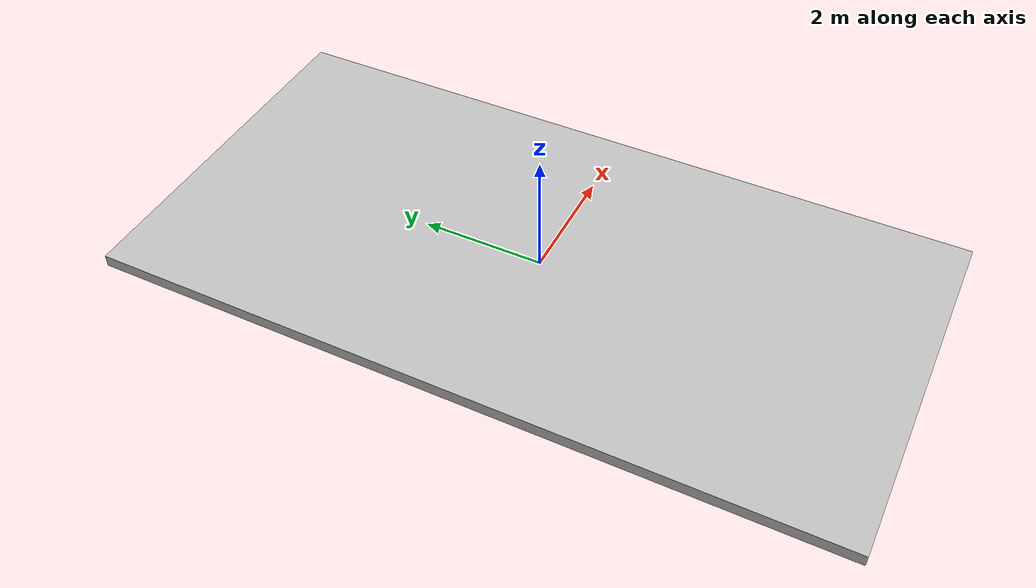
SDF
<?xml version="1.0" ?>

<sdf version="1.5">
<model name='concrete_600_1200_20'>
      <static>1</static>
      <link name="link">
        <pose>0 0 0.1 0 0 0</pose>

        <visual name="visual">
          <geometry>
            <box>
              <size>6.0 12.0 0.2</size>
            </box>
          </geometry>
          <material>
            <script>
              <uri>model:///home/stibipet/mrs_workspace/src/radiation_nodes/gazebo_rad_obstacle/gazebo_models/materials/scripts</uri>
              <uri>model:///home/stibipet/mrs_workspace/src/radiation_nodes/gazebo_rad_obstacle/gazebo_models/materials/textures/</uri>
              <name>concrete/Image</name>
            </script>
          </material>
        </visual>

      </link>

      <plugin name='concrete' filename='libgazebo_rad_obstacle.so'>
        <depth>6.0</depth>
        <width>12.0</width>
        <height>0.2</height>
        <material>concrete</material>
        <density>2.3</density> <!-- g/cm^3 -->
        <mac60kev>0.266</mac60kev> <!-- cm^2/g -->
        <mac600kev>0.06236</mac600kev> <!-- cm^2/g -->
      </plugin>

    </model>
  </sdf>
